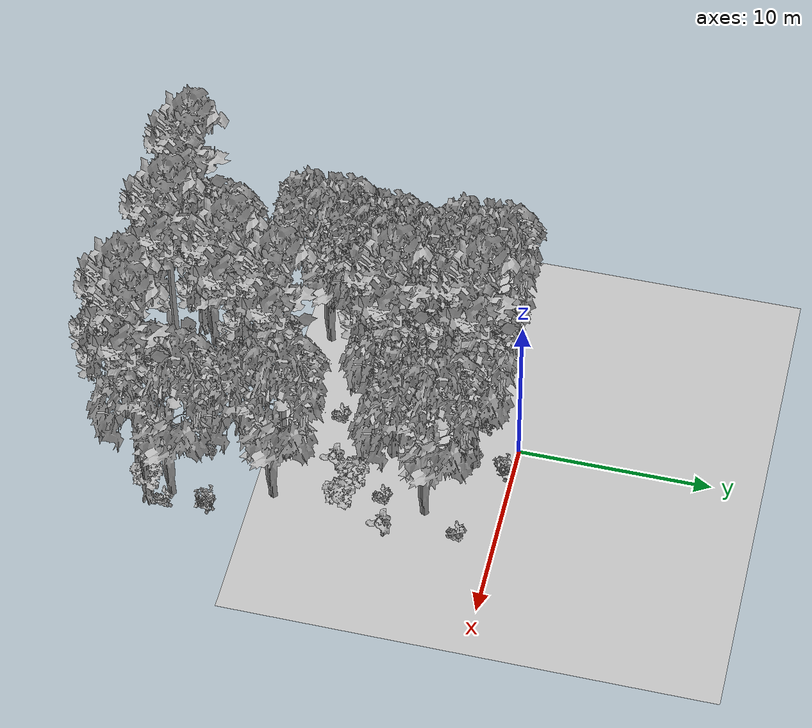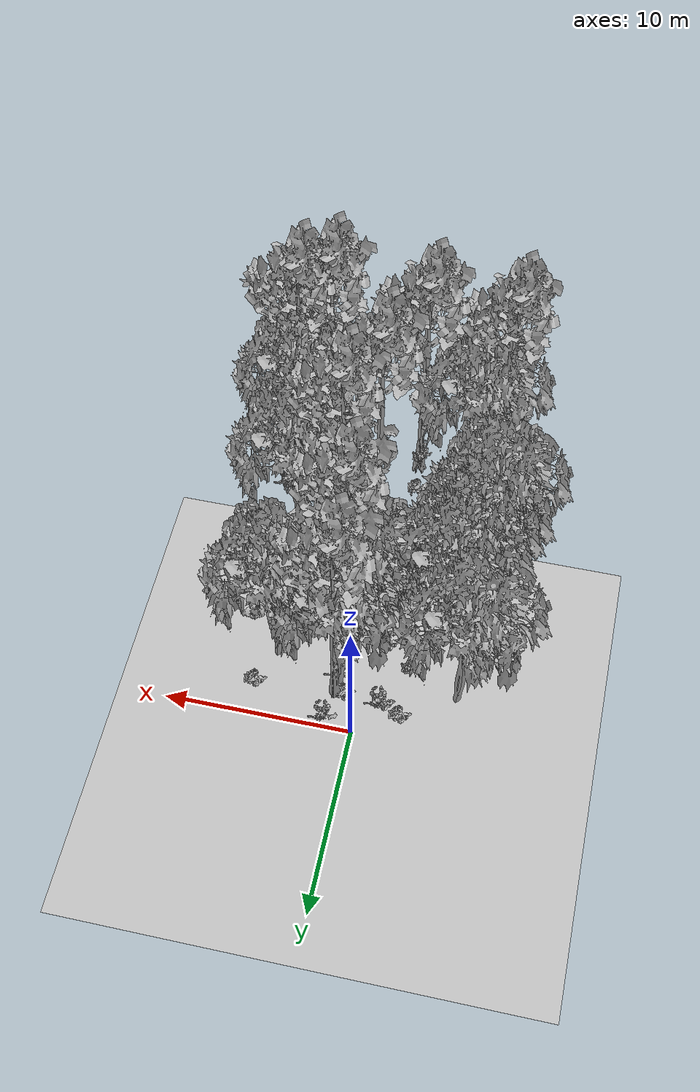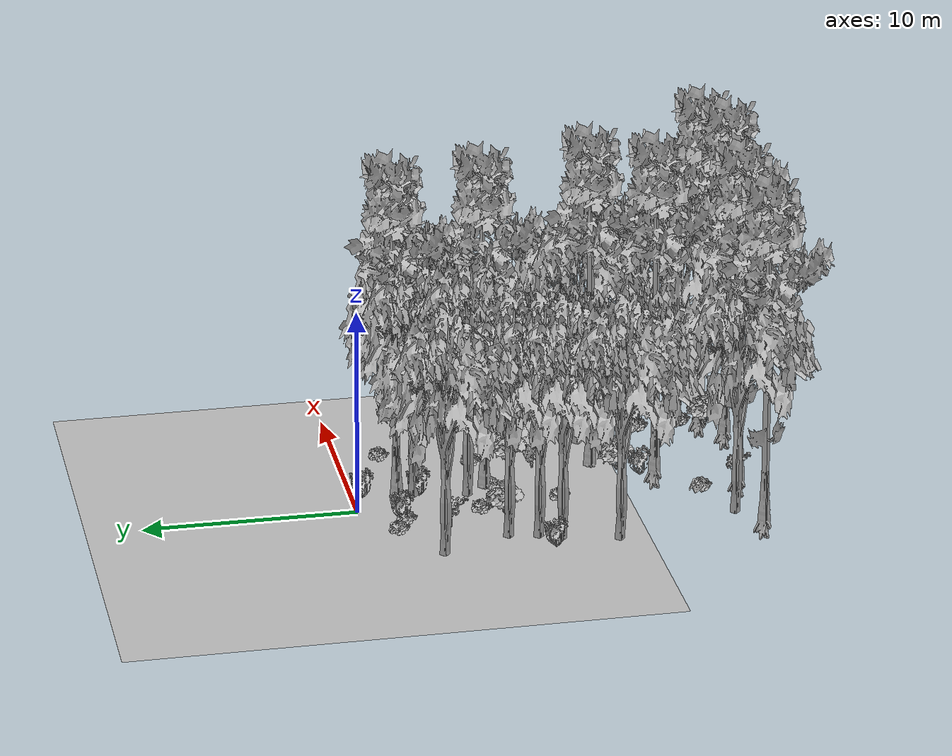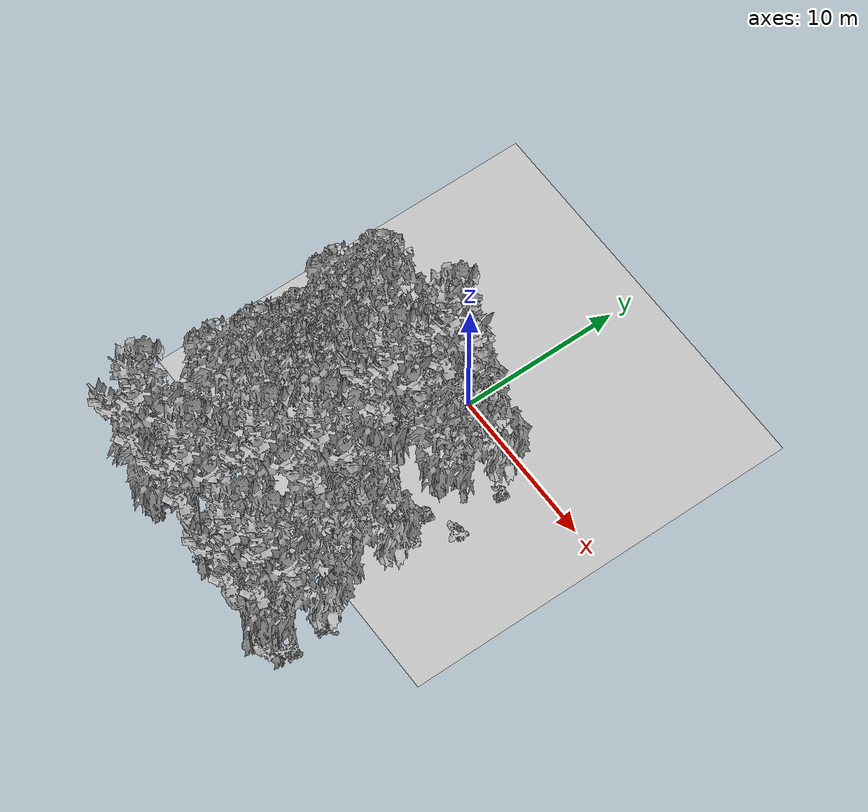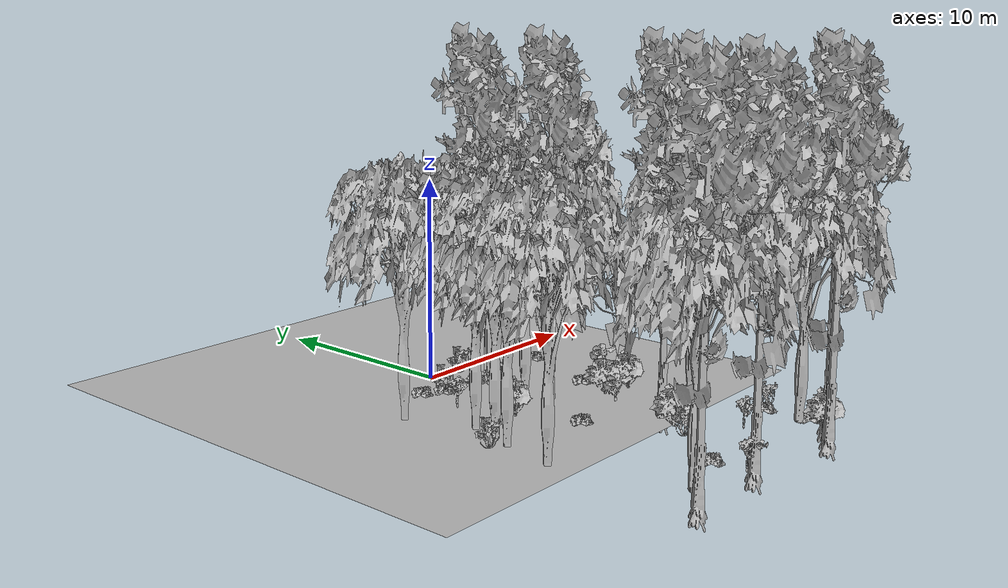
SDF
<sdf version="1.7">
 <world name="default">
  <model name="ground_plane">
   <static>1</static>
   <link name="link">
    <collision name="collision">
     <pose>-50 0 0 0 -0 0</pose>
     <geometry><plane><normal>0 0 1</normal><size>80 80</size></plane></geometry>
     <surface><contact><ode><min_depth>0.01</min_depth><max_vel>0</max_vel></ode></contact></surface>
    </collision>
    <visual name="grass">
     <cast_shadows>0</cast_shadows>
     <geometry>
      <mesh>
       <scale>0.46714285714285714 0.46714285714285714 0.1</scale>
       <uri>file://grass_plane/meshes/grass_plane.dae</uri>
      </mesh>
     </geometry>
    </visual>
   </link>
  </model>
  <model name="Tree 2">
   <static>1</static>
   <pose>-4.546279242472792 -8.64030182197908 0 1.57079 -0 0</pose>
   <link name="link">
    <collision name="collision">
     <geometry><mesh><scale>3.5 5 3.5</scale><uri>model://tree_2/meshes/tree_2.obj</uri></mesh></geometry>
    </collision>
    <visual name="visual">
     <geometry><mesh><scale>3.5 5 3.5</scale><uri>model://tree_2/meshes/tree_2.obj</uri></mesh></geometry>
    </visual>
   </link>
  </model>
  <model name="Tree 14">
   <static>1</static>
   <pose>5.384530217257961 -11.58191050145252 0 1.57079 -0 0</pose>
   <link name="link">
    <collision name="collision">
     <geometry><mesh><scale>3.5 5 3.5</scale><uri>model://tree_2/meshes/tree_2.obj</uri></mesh></geometry>
    </collision>
    <visual name="visual">
     <geometry><mesh><scale>3.5 5 3.5</scale><uri>model://tree_2/meshes/tree_2.obj</uri></mesh></geometry>
    </visual>
   </link>
  </model>
  <model name="Tree 30">
   <static>1</static>
   <pose>1.3349887892582686 -2.050556169885752 0 1.57079 -0 0</pose>
   <link name="link">
    <collision name="collision">
     <geometry><mesh><scale>3.5 5 3.5</scale><uri>model://tree_9/meshes/tree_9.obj</uri></mesh></geometry>
    </collision>
    <visual name="visual">
     <geometry><mesh><scale>3.5 5 3.5</scale><uri>model://tree_9/meshes/tree_9.obj</uri></mesh></geometry>
    </visual>
   </link>
  </model>
  <model name="Tree 37">
   <static>1</static>
   <pose>2.954171007424989 -11.597068263060475 0 1.57079 -0 0</pose>
   <link name="link">
    <collision name="collision">
     <geometry><mesh><scale>3.5 5 3.5</scale><uri>model://tree_9/meshes/tree_9.obj</uri></mesh></geometry>
    </collision>
    <visual name="visual">
     <geometry><mesh><scale>3.5 5 3.5</scale><uri>model://tree_9/meshes/tree_9.obj</uri></mesh></geometry>
    </visual>
   </link>
  </model>
  <model name="Tree 61">
   <static>1</static>
   <pose>-4.159204598858558 -7.65163735387074 0 1.57079 -0 0</pose>
   <link name="link">
    <collision name="collision">
     <geometry><mesh><scale>3.5 5 3.5</scale><uri>model://tree_2/meshes/tree_2.obj</uri></mesh></geometry>
    </collision>
    <visual name="visual">
     <geometry><mesh><scale>3.5 5 3.5</scale><uri>model://tree_2/meshes/tree_2.obj</uri></mesh></geometry>
    </visual>
   </link>
  </model>
  <model name="Tree 69">
   <static>1</static>
   <pose>1.5846575292997684 -6.250214460172003 0 1.57079 -0 0</pose>
   <link name="link">
    <collision name="collision">
     <geometry><mesh><scale>3.5 5 3.5</scale><uri>model://tree_9/meshes/tree_9.obj</uri></mesh></geometry>
    </collision>
    <visual name="visual">
     <geometry><mesh><scale>3.5 5 3.5</scale><uri>model://tree_9/meshes/tree_9.obj</uri></mesh></geometry>
    </visual>
   </link>
  </model>
  <model name="Tree 89">
   <static>1</static>
   <pose>1.1453242297420303 -2.8454819938028635 0 1.57079 -0 0</pose>
   <link name="link">
    <collision name="collision">
     <geometry><mesh><scale>3.5 5 3.5</scale><uri>model://tree_2/meshes/tree_2.obj</uri></mesh></geometry>
    </collision>
    <visual name="visual">
     <geometry><mesh><scale>3.5 5 3.5</scale><uri>model://tree_2/meshes/tree_2.obj</uri></mesh></geometry>
    </visual>
   </link>
  </model>
  <model name="Tree 112">
   <static>1</static>
   <pose>4.718869229965755 -3.878214148874328 0 1.57079 -0 0</pose>
   <link name="link">
    <collision name="collision">
     <geometry><mesh><scale>3.5 5 3.5</scale><uri>model://tree_2/meshes/tree_2.obj</uri></mesh></geometry>
    </collision>
    <visual name="visual">
     <geometry><mesh><scale>3.5 5 3.5</scale><uri>model://tree_2/meshes/tree_2.obj</uri></mesh></geometry>
    </visual>
   </link>
  </model>
  <model name="Tree 182">
   <static>1</static>
   <pose>0.7496911883325339 -5.33088219539664 0 1.57079 -0 0</pose>
   <link name="link">
    <collision name="collision">
     <geometry><mesh><scale>3.5 5 3.5</scale><uri>model://tree_2/meshes/tree_2.obj</uri></mesh></geometry>
    </collision>
    <visual name="visual">
     <geometry><mesh><scale>3.5 5 3.5</scale><uri>model://tree_2/meshes/tree_2.obj</uri></mesh></geometry>
    </visual>
   </link>
  </model>
  <model name="Tree 259">
   <static>1</static>
   <pose>6.381415360871486 -16.62200129536395 0 1.57079 -0 0</pose>
   <link name="link">
    <collision name="collision">
     <geometry><mesh><scale>3.5 5 3.5</scale><uri>model://tree_2/meshes/tree_2.obj</uri></mesh></geometry>
    </collision>
    <visual name="visual">
     <geometry><mesh><scale>3.5 5 3.5</scale><uri>model://tree_2/meshes/tree_2.obj</uri></mesh></geometry>
    </visual>
   </link>
  </model>
  <model name="Tree 268">
   <static>1</static>
   <pose>6.703587311254957 -17.802230758448736 0 1.57079 -0 0</pose>
   <link name="link">
    <collision name="collision">
     <geometry><mesh><scale>3.5 5 3.5</scale><uri>model://tree_9/meshes/tree_9.obj</uri></mesh></geometry>
    </collision>
    <visual name="visual">
     <geometry><mesh><scale>3.5 5 3.5</scale><uri>model://tree_9/meshes/tree_9.obj</uri></mesh></geometry>
    </visual>
   </link>
  </model>
  <model name="Tree 300">
   <static>1</static>
   <pose>1.5478068553070656 -14.376354017254851 0 1.57079 -0 0</pose>
   <link name="link">
    <collision name="collision">
     <geometry><mesh><scale>3.5 5 3.5</scale><uri>model://tree_9/meshes/tree_9.obj</uri></mesh></geometry>
    </collision>
    <visual name="visual">
     <geometry><mesh><scale>3.5 5 3.5</scale><uri>model://tree_9/meshes/tree_9.obj</uri></mesh></geometry>
    </visual>
   </link>
  </model>
  <model name="Tree 316">
   <static>1</static>
   <pose>-3.899196546704907 -6.2981635479856095 0 1.57079 -0 0</pose>
   <link name="link">
    <collision name="collision">
     <geometry><mesh><scale>3.5 5 3.5</scale><uri>model://tree_2/meshes/tree_2.obj</uri></mesh></geometry>
    </collision>
    <visual name="visual">
     <geometry><mesh><scale>3.5 5 3.5</scale><uri>model://tree_2/meshes/tree_2.obj</uri></mesh></geometry>
    </visual>
   </link>
  </model>
  <model name="Tree 354">
   <static>1</static>
   <pose>-5.127108005934559 -3.105598139258973 0 1.57079 -0 0</pose>
   <link name="link">
    <collision name="collision">
     <geometry><mesh><scale>3.5 5 3.5</scale><uri>model://tree_2/meshes/tree_2.obj</uri></mesh></geometry>
    </collision>
    <visual name="visual">
     <geometry><mesh><scale>3.5 5 3.5</scale><uri>model://tree_2/meshes/tree_2.obj</uri></mesh></geometry>
    </visual>
   </link>
  </model>
  <model name="Tree 420">
   <static>1</static>
   <pose>-4.585721495352985 -18.061372089878766 0 1.57079 -0 0</pose>
   <link name="link">
    <collision name="collision">
     <geometry><mesh><scale>3.5 5 3.5</scale><uri>model://tree_9/meshes/tree_9.obj</uri></mesh></geometry>
    </collision>
    <visual name="visual">
     <geometry><mesh><scale>3.5 5 3.5</scale><uri>model://tree_9/meshes/tree_9.obj</uri></mesh></geometry>
    </visual>
   </link>
  </model>
  <model name="Tree 440">
   <static>1</static>
   <pose>-5.081443817250012 -11.231814681639989 0 1.57079 -0 0</pose>
   <link name="link">
    <collision name="collision">
     <geometry><mesh><scale>3.5 5 3.5</scale><uri>model://tree_2/meshes/tree_2.obj</uri></mesh></geometry>
    </collision>
    <visual name="visual">
     <geometry><mesh><scale>3.5 5 3.5</scale><uri>model://tree_2/meshes/tree_2.obj</uri></mesh></geometry>
    </visual>
   </link>
  </model>
  <model name="Tree 448">
   <static>1</static>
   <pose>-3.362896247630225 -17.065988772768044 0 1.57079 -0 0</pose>
   <link name="link">
    <collision name="collision">
     <geometry><mesh><scale>3.5 5 3.5</scale><uri>model://tree_2/meshes/tree_2.obj</uri></mesh></geometry>
    </collision>
    <visual name="visual">
     <geometry><mesh><scale>3.5 5 3.5</scale><uri>model://tree_2/meshes/tree_2.obj</uri></mesh></geometry>
    </visual>
   </link>
  </model>
  <model name="Tree 539">
   <static>1</static>
   <pose>5.1205036604310195 -18.661886536753265 0 1.57079 -0 0</pose>
   <link name="link">
    <collision name="collision">
     <geometry><mesh><scale>3.5 5 3.5</scale><uri>model://tree_9/meshes/tree_9.obj</uri></mesh></geometry>
    </collision>
    <visual name="visual">
     <geometry><mesh><scale>3.5 5 3.5</scale><uri>model://tree_9/meshes/tree_9.obj</uri></mesh></geometry>
    </visual>
   </link>
  </model>
  <model name="Tree 545">
   <static>1</static>
   <pose>-0.15624639655148798 -17.989797739276412 0 1.57079 -0 0</pose>
   <link name="link">
    <collision name="collision">
     <geometry><mesh><scale>3.5 5 3.5</scale><uri>model://tree_9/meshes/tree_9.obj</uri></mesh></geometry>
    </collision>
    <visual name="visual">
     <geometry><mesh><scale>3.5 5 3.5</scale><uri>model://tree_9/meshes/tree_9.obj</uri></mesh></geometry>
    </visual>
   </link>
  </model>
  <model name="Bush 57">
   <static>1</static>
   <pose>1.6111336441262623 -0.5149972029280221 0 1.57079 -0 0</pose>
   <link name="link">
    <collision name="collision">
     <geometry><mesh><scale>2 2 2</scale><uri>model://bush_4/meshes/bush_4.obj</uri></mesh></geometry>
     <surface><contact><collide_without_contact>false</collide_without_contact></contact></surface>
    </collision>
    <visual name="visual">
     <geometry><mesh><scale>2 2 2</scale><uri>model://bush_4/meshes/bush_4.obj</uri></mesh></geometry>
    </visual>
   </link>
  </model>
  <model name="Bush 82">
   <static>1</static>
   <pose>5.684918165877171 -2.0009657732437987 0 1.57079 -0 0</pose>
   <link name="link">
    <collision name="collision">
     <geometry><mesh><scale>2 2 2</scale><uri>model://bush_2/meshes/bush_2.obj</uri></mesh></geometry>
     <surface><contact><collide_without_contact>false</collide_without_contact></contact></surface>
    </collision>
    <visual name="visual">
     <geometry><mesh><scale>2 2 2</scale><uri>model://bush_2/meshes/bush_2.obj</uri></mesh></geometry>
    </visual>
   </link>
  </model>
  <model name="Bush 85">
   <static>1</static>
   <pose>6.648128167169567 -14.801702644965822 0 1.57079 -0 0</pose>
   <link name="link">
    <collision name="collision">
     <geometry><mesh><scale>2 2 2</scale><uri>model://bush_2/meshes/bush_2.obj</uri></mesh></geometry>
     <surface><contact><collide_without_contact>false</collide_without_contact></contact></surface>
    </collision>
    <visual name="visual">
     <geometry><mesh><scale>2 2 2</scale><uri>model://bush_2/meshes/bush_2.obj</uri></mesh></geometry>
    </visual>
   </link>
  </model>
  <model name="Bush 91">
   <static>1</static>
   <pose>2.2080379576963196 -12.72492455629381 0 1.57079 -0 0</pose>
   <link name="link">
    <collision name="collision">
     <geometry><mesh><scale>2 2 2</scale><uri>model://bush_1/meshes/bush_1.obj</uri></mesh></geometry>
     <surface><contact><collide_without_contact>false</collide_without_contact></contact></surface>
    </collision>
    <visual name="visual">
     <geometry><mesh><scale>2 2 2</scale><uri>model://bush_1/meshes/bush_1.obj</uri></mesh></geometry>
    </visual>
   </link>
  </model>
  <model name="Bush 101">
   <static>1</static>
   <pose>1.3233838155504927 -3.1241847075896416 0 1.57079 -0 0</pose>
   <link name="link">
    <collision name="collision">
     <geometry><mesh><scale>2 2 2</scale><uri>model://bush_4/meshes/bush_4.obj</uri></mesh></geometry>
     <surface><contact><collide_without_contact>false</collide_without_contact></contact></surface>
    </collision>
    <visual name="visual">
     <geometry><mesh><scale>2 2 2</scale><uri>model://bush_4/meshes/bush_4.obj</uri></mesh></geometry>
    </visual>
   </link>
  </model>
  <model name="Bush 131">
   <static>1</static>
   <pose>-1.0710327815770029 -1.903183126396911 0 1.57079 -0 0</pose>
   <link name="link">
    <collision name="collision">
     <geometry><mesh><scale>2 2 2</scale><uri>model://bush_4/meshes/bush_4.obj</uri></mesh></geometry>
     <surface><contact><collide_without_contact>false</collide_without_contact></contact></surface>
    </collision>
    <visual name="visual">
     <geometry><mesh><scale>2 2 2</scale><uri>model://bush_4/meshes/bush_4.obj</uri></mesh></geometry>
    </visual>
   </link>
  </model>
  <model name="Bush 149">
   <static>1</static>
   <pose>6.669509851381804 -5.600750247813188 0 1.57079 -0 0</pose>
   <link name="link">
    <collision name="collision">
     <geometry><mesh><scale>2 2 2</scale><uri>model://bush_0/meshes/bush_0.obj</uri></mesh></geometry>
     <surface><contact><collide_without_contact>false</collide_without_contact></contact></surface>
    </collision>
    <visual name="visual">
     <geometry><mesh><scale>2 2 2</scale><uri>model://bush_0/meshes/bush_0.obj</uri></mesh></geometry>
    </visual>
   </link>
  </model>
  <model name="Bush 204">
   <static>1</static>
   <pose>4.312952442438153 -6.156523513041122 0 1.57079 -0 0</pose>
   <link name="link">
    <collision name="collision">
     <geometry><mesh><scale>2 2 2</scale><uri>model://bush_2/meshes/bush_2.obj</uri></mesh></geometry>
     <surface><contact><collide_without_contact>false</collide_without_contact></contact></surface>
    </collision>
    <visual name="visual">
     <geometry><mesh><scale>2 2 2</scale><uri>model://bush_2/meshes/bush_2.obj</uri></mesh></geometry>
    </visual>
   </link>
  </model>
  <model name="Bush 217">
   <static>1</static>
   <pose>-5.124889999012574 -8.23175038339712 0 1.57079 -0 0</pose>
   <link name="link">
    <collision name="collision">
     <geometry><mesh><scale>2 2 2</scale><uri>model://bush_4/meshes/bush_4.obj</uri></mesh></geometry>
     <surface><contact><collide_without_contact>false</collide_without_contact></contact></surface>
    </collision>
    <visual name="visual">
     <geometry><mesh><scale>2 2 2</scale><uri>model://bush_4/meshes/bush_4.obj</uri></mesh></geometry>
    </visual>
   </link>
  </model>
  <model name="Bush 248">
   <static>1</static>
   <pose>3.233784859722462 -8.863994826041647 0 1.57079 -0 0</pose>
   <link name="link">
    <collision name="collision">
     <geometry><mesh><scale>2 2 2</scale><uri>model://bush_0/meshes/bush_0.obj</uri></mesh></geometry>
     <surface><contact><collide_without_contact>false</collide_without_contact></contact></surface>
    </collision>
    <visual name="visual">
     <geometry><mesh><scale>2 2 2</scale><uri>model://bush_0/meshes/bush_0.obj</uri></mesh></geometry>
    </visual>
   </link>
  </model>
  <model name="Bush 256">
   <static>1</static>
   <pose>6.927440578211275 -14.725592759579797 0 1.57079 -0 0</pose>
   <link name="link">
    <collision name="collision">
     <geometry><mesh><scale>2 2 2</scale><uri>model://bush_4/meshes/bush_4.obj</uri></mesh></geometry>
     <surface><contact><collide_without_contact>false</collide_without_contact></contact></surface>
    </collision>
    <visual name="visual">
     <geometry><mesh><scale>2 2 2</scale><uri>model://bush_4/meshes/bush_4.obj</uri></mesh></geometry>
    </visual>
   </link>
  </model>
  <model name="Bush 293">
   <static>1</static>
   <pose>0.9169275374514498 -2.2018273605569476 0 1.57079 -0 0</pose>
   <link name="link">
    <collision name="collision">
     <geometry><mesh><scale>2 2 2</scale><uri>model://bush_2/meshes/bush_2.obj</uri></mesh></geometry>
     <surface><contact><collide_without_contact>false</collide_without_contact></contact></surface>
    </collision>
    <visual name="visual">
     <geometry><mesh><scale>2 2 2</scale><uri>model://bush_2/meshes/bush_2.obj</uri></mesh></geometry>
    </visual>
   </link>
  </model>
  <model name="Bush 302">
   <static>1</static>
   <pose>-0.7841777736110629 -5.6389210623354415 0 1.57079 -0 0</pose>
   <link name="link">
    <collision name="collision">
     <geometry><mesh><scale>2 2 2</scale><uri>model://bush_2/meshes/bush_2.obj</uri></mesh></geometry>
     <surface><contact><collide_without_contact>false</collide_without_contact></contact></surface>
    </collision>
    <visual name="visual">
     <geometry><mesh><scale>2 2 2</scale><uri>model://bush_2/meshes/bush_2.obj</uri></mesh></geometry>
    </visual>
   </link>
  </model>
  <model name="Bush 351">
   <static>1</static>
   <pose>-1.2428238070347604 -2.0479835453774697 0 1.57079 -0 0</pose>
   <link name="link">
    <collision name="collision">
     <geometry><mesh><scale>2 2 2</scale><uri>model://bush_2/meshes/bush_2.obj</uri></mesh></geometry>
     <surface><contact><collide_without_contact>false</collide_without_contact></contact></surface>
    </collision>
    <visual name="visual">
     <geometry><mesh><scale>2 2 2</scale><uri>model://bush_2/meshes/bush_2.obj</uri></mesh></geometry>
    </visual>
   </link>
  </model>
  <model name="Bush 378">
   <static>1</static>
   <pose>-1.4670928056278996 -6.625463475315094 0 1.57079 -0 0</pose>
   <link name="link">
    <collision name="collision">
     <geometry><mesh><scale>2 2 2</scale><uri>model://bush_1/meshes/bush_1.obj</uri></mesh></geometry>
     <surface><contact><collide_without_contact>false</collide_without_contact></contact></surface>
    </collision>
    <visual name="visual">
     <geometry><mesh><scale>2 2 2</scale><uri>model://bush_1/meshes/bush_1.obj</uri></mesh></geometry>
    </visual>
   </link>
  </model>
  <model name="Bush 382">
   <static>1</static>
   <pose>5.174937046084338 -8.279058587025183 0 1.57079 -0 0</pose>
   <link name="link">
    <collision name="collision">
     <geometry><mesh><scale>2 2 2</scale><uri>model://bush_1/meshes/bush_1.obj</uri></mesh></geometry>
     <surface><contact><collide_without_contact>false</collide_without_contact></contact></surface>
    </collision>
    <visual name="visual">
     <geometry><mesh><scale>2 2 2</scale><uri>model://bush_1/meshes/bush_1.obj</uri></mesh></geometry>
    </visual>
   </link>
  </model>
  <model name="Bush 396">
   <static>1</static>
   <pose>6.9204463403956 -16.94365858913649 0 1.57079 -0 0</pose>
   <link name="link">
    <collision name="collision">
     <geometry><mesh><scale>2 2 2</scale><uri>model://bush_2/meshes/bush_2.obj</uri></mesh></geometry>
     <surface><contact><collide_without_contact>false</collide_without_contact></contact></surface>
    </collision>
    <visual name="visual">
     <geometry><mesh><scale>2 2 2</scale><uri>model://bush_2/meshes/bush_2.obj</uri></mesh></geometry>
    </visual>
   </link>
  </model>
  <model name="Bush 403">
   <static>1</static>
   <pose>-2.3522791461015373 -3.8866894103121297 0 1.57079 -0 0</pose>
   <link name="link">
    <collision name="collision">
     <geometry><mesh><scale>2 2 2</scale><uri>model://bush_5/meshes/bush_5.obj</uri></mesh></geometry>
     <surface><contact><collide_without_contact>false</collide_without_contact></contact></surface>
    </collision>
    <visual name="visual">
     <geometry><mesh><scale>2 2 2</scale><uri>model://bush_5/meshes/bush_5.obj</uri></mesh></geometry>
    </visual>
   </link>
  </model>
  <model name="Bush 409">
   <static>1</static>
   <pose>4.037727157677729 -15.19924840324645 0 1.57079 -0 0</pose>
   <link name="link">
    <collision name="collision">
     <geometry><mesh><scale>2 2 2</scale><uri>model://bush_5/meshes/bush_5.obj</uri></mesh></geometry>
     <surface><contact><collide_without_contact>false</collide_without_contact></contact></surface>
    </collision>
    <visual name="visual">
     <geometry><mesh><scale>2 2 2</scale><uri>model://bush_5/meshes/bush_5.obj</uri></mesh></geometry>
    </visual>
   </link>
  </model>
  <model name="Bush 433">
   <static>1</static>
   <pose>-0.39641485120294107 -16.17722687003716 0 1.57079 -0 0</pose>
   <link name="link">
    <collision name="collision">
     <geometry><mesh><scale>2 2 2</scale><uri>model://bush_2/meshes/bush_2.obj</uri></mesh></geometry>
     <surface><contact><collide_without_contact>false</collide_without_contact></contact></surface>
    </collision>
    <visual name="visual">
     <geometry><mesh><scale>2 2 2</scale><uri>model://bush_2/meshes/bush_2.obj</uri></mesh></geometry>
    </visual>
   </link>
  </model>
  <model name="Bush 463">
   <static>1</static>
   <pose>1.5611736814762054 -13.688101323768844 0 1.57079 -0 0</pose>
   <link name="link">
    <collision name="collision">
     <geometry><mesh><scale>2 2 2</scale><uri>model://bush_4/meshes/bush_4.obj</uri></mesh></geometry>
     <surface><contact><collide_without_contact>false</collide_without_contact></contact></surface>
    </collision>
    <visual name="visual">
     <geometry><mesh><scale>2 2 2</scale><uri>model://bush_4/meshes/bush_4.obj</uri></mesh></geometry>
    </visual>
   </link>
  </model>
  <model name="Bush 474">
   <static>1</static>
   <pose>6.25957491379544 -18.038447562680837 0 1.57079 -0 0</pose>
   <link name="link">
    <collision name="collision">
     <geometry><mesh><scale>2 2 2</scale><uri>model://bush_1/meshes/bush_1.obj</uri></mesh></geometry>
     <surface><contact><collide_without_contact>false</collide_without_contact></contact></surface>
    </collision>
    <visual name="visual">
     <geometry><mesh><scale>2 2 2</scale><uri>model://bush_1/meshes/bush_1.obj</uri></mesh></geometry>
    </visual>
   </link>
  </model>
  <model name="Bush 507">
   <static>1</static>
   <pose>-0.25392003202944124 -17.7338991502463 0 1.57079 -0 0</pose>
   <link name="link">
    <collision name="collision">
     <geometry><mesh><scale>2 2 2</scale><uri>model://bush_5/meshes/bush_5.obj</uri></mesh></geometry>
     <surface><contact><collide_without_contact>false</collide_without_contact></contact></surface>
    </collision>
    <visual name="visual">
     <geometry><mesh><scale>2 2 2</scale><uri>model://bush_5/meshes/bush_5.obj</uri></mesh></geometry>
    </visual>
   </link>
  </model>
  <model name="Bush 541">
   <static>1</static>
   <pose>-2.2356850676597304 -1.5103369276743592 0 1.57079 -0 0</pose>
   <link name="link">
    <collision name="collision">
     <geometry><mesh><scale>2 2 2</scale><uri>model://bush_2/meshes/bush_2.obj</uri></mesh></geometry>
     <surface><contact><collide_without_contact>false</collide_without_contact></contact></surface>
    </collision>
    <visual name="visual">
     <geometry><mesh><scale>2 2 2</scale><uri>model://bush_2/meshes/bush_2.obj</uri></mesh></geometry>
    </visual>
   </link>
  </model>
  <model name="Bush 554">
   <static>1</static>
   <pose>3.7689530691177566 -7.915873024651461 0 1.57079 -0 0</pose>
   <link name="link">
    <collision name="collision">
     <geometry><mesh><scale>2 2 2</scale><uri>model://bush_1/meshes/bush_1.obj</uri></mesh></geometry>
     <surface><contact><collide_without_contact>false</collide_without_contact></contact></surface>
    </collision>
    <visual name="visual">
     <geometry><mesh><scale>2 2 2</scale><uri>model://bush_1/meshes/bush_1.obj</uri></mesh></geometry>
    </visual>
   </link>
  </model>
  <model name="Bush 609">
   <static>1</static>
   <pose>-0.22263149400903615 -9.45016947106722 0 1.57079 -0 0</pose>
   <link name="link">
    <collision name="collision">
     <geometry><mesh><scale>2 2 2</scale><uri>model://bush_2/meshes/bush_2.obj</uri></mesh></geometry>
     <surface><contact><collide_without_contact>false</collide_without_contact></contact></surface>
    </collision>
    <visual name="visual">
     <geometry><mesh><scale>2 2 2</scale><uri>model://bush_2/meshes/bush_2.obj</uri></mesh></geometry>
    </visual>
   </link>
  </model>
 </world>
</sdf>
